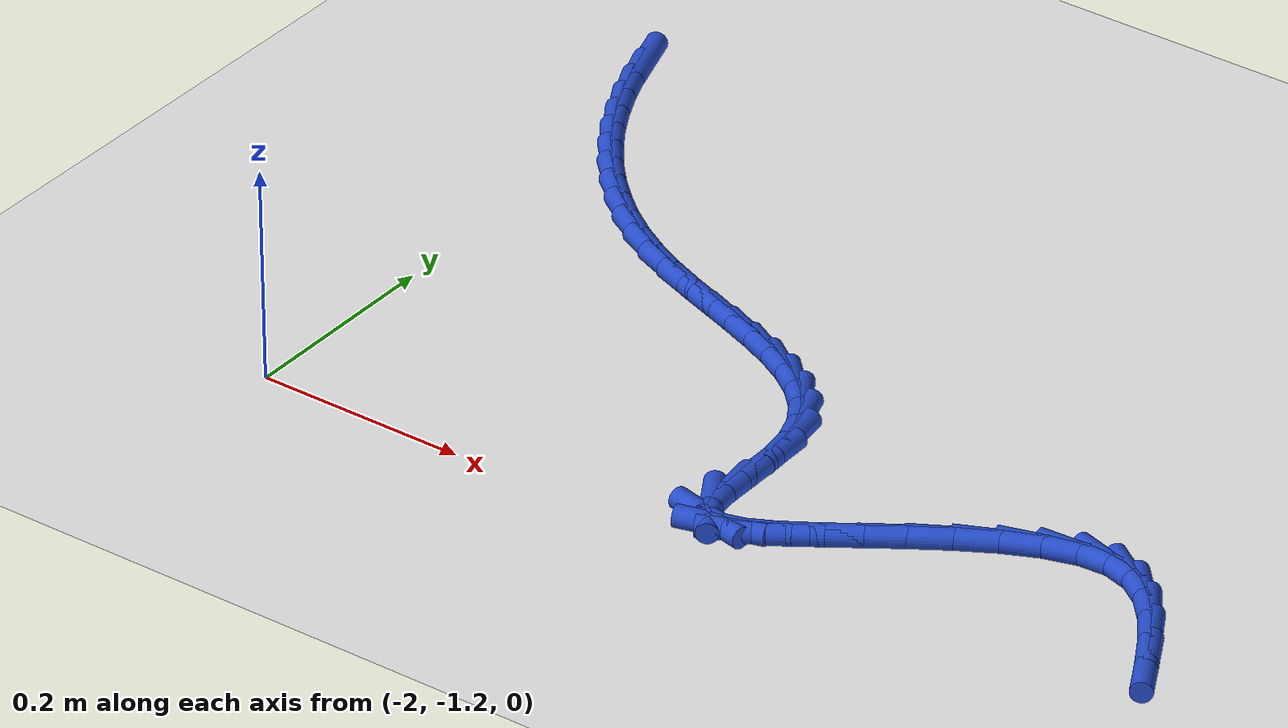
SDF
<sdf version="1.6">
 <world name="default">
  <model name="ground_plane">
   <static>1</static>
   <link name="link">
    <collision name="collision">
     <geometry><plane><normal>0 0 1</normal><size>100 100</size></plane></geometry>
     <surface><friction><ode><mu>100</mu><mu2>50</mu2></ode></friction></surface>
    </collision>
    <visual name="visual">
     <cast_shadows>0</cast_shadows>
     <geometry><plane><normal>0 0 1</normal><size>100 100</size></plane></geometry>
     <material>
      <script><uri>file://media/materials/scripts/gazebo.material</uri><name>Gazebo/WhiteGlow</name></script>
     </material>
    </visual>
   </link>
  </model>
  <model name="line">
   <link name="link_149">
    <pose>-2.0439318531963306 -0.6153956682053037 0.01 0 1.57 -1.243936947325137</pose>
    <collision name="collision">
     <geometry><cylinder><radius>0.01</radius><length>0.08</length></cylinder></geometry>
    </collision>
    <visual name="visual">
     <material>
      <script><name>Gazebo/Blue</name><uri>file://media/materials/scripts/gazebo.material</uri></script>
     </material>
     <geometry><cylinder><radius>0.01</radius><length>0.08</length></cylinder></geometry>
    </visual>
   </link>
   <link name="link_150">
    <pose>-2.034659028122288 -0.642747558064747 0.01 0 1.57 -1.181830582130771</pose>
    <collision name="collision">
     <geometry><cylinder><radius>0.01</radius><length>0.08</length></cylinder></geometry>
    </collision>
    <visual name="visual">
     <material>
      <script><name>Gazebo/Blue</name><uri>file://media/materials/scripts/gazebo.material</uri></script>
     </material>
     <geometry><cylinder><radius>0.01</radius><length>0.08</length></cylinder></geometry>
    </visual>
   </link>
   <link name="link_151">
    <pose>-2.023665917364175 -0.6695700707129312 0.01 0 1.57 -1.1180830093113336</pose>
    <collision name="collision">
     <geometry><cylinder><radius>0.01</radius><length>0.08</length></cylinder></geometry>
    </collision>
    <visual name="visual">
     <material>
      <script><name>Gazebo/Blue</name><uri>file://media/materials/scripts/gazebo.material</uri></script>
     </material>
     <geometry><cylinder><radius>0.01</radius><length>0.08</length></cylinder></geometry>
    </visual>
   </link>
   <link name="link_152">
    <pose>-2.0109474246009262 -0.6957179697811116 0.01 0 1.57 -1.0523707758079772</pose>
    <collision name="collision">
     <geometry><cylinder><radius>0.01</radius><length>0.08</length></cylinder></geometry>
    </collision>
    <visual name="visual">
     <material>
      <script><name>Gazebo/Blue</name><uri>file://media/materials/scripts/gazebo.material</uri></script>
     </material>
     <geometry><cylinder><radius>0.01</radius><length>0.08</length></cylinder></geometry>
    </visual>
   </link>
   <link name="link_153">
    <pose>-1.9964984535114754 -0.7210460189005438 0.01 0 1.57 -0.9844274378381331</pose>
    <collision name="collision">
     <geometry><cylinder><radius>0.01</radius><length>0.08</length></cylinder></geometry>
    </collision>
    <visual name="visual">
     <material>
      <script><name>Gazebo/Blue</name><uri>file://media/materials/scripts/gazebo.material</uri></script>
     </material>
     <geometry><cylinder><radius>0.01</radius><length>0.08</length></cylinder></geometry>
    </visual>
   </link>
   <link name="link_154">
    <pose>-1.9803139077747578 -0.7454089817024832 0.01 0 1.57 -0.9140594174121647</pose>
    <collision name="collision">
     <geometry><cylinder><radius>0.01</radius><length>0.08</length></cylinder></geometry>
    </collision>
    <visual name="visual">
     <material>
      <script><name>Gazebo/Blue</name><uri>file://media/materials/scripts/gazebo.material</uri></script>
     </material>
     <geometry><cylinder><radius>0.01</radius><length>0.08</length></cylinder></geometry>
    </visual>
   </link>
   <link name="link_155">
    <pose>-1.9623886910697081 -0.7686616218181851 0.01 0 1.57 -0.841164737750572</pose>
    <collision name="collision">
     <geometry><cylinder><radius>0.01</radius><length>0.08</length></cylinder></geometry>
    </collision>
    <visual name="visual">
     <material>
      <script><name>Gazebo/Blue</name><uri>file://media/materials/scripts/gazebo.material</uri></script>
     </material>
     <geometry><cylinder><radius>0.01</radius><length>0.08</length></cylinder></geometry>
    </visual>
   </link>
   <link name="link_156">
    <pose>-1.9427177070752593 -0.7906587028789054 0.01 0 1.57 -0.7657529365133701</pose>
    <collision name="collision">
     <geometry><cylinder><radius>0.01</radius><length>0.08</length></cylinder></geometry>
    </collision>
    <visual name="visual">
     <material>
      <script><name>Gazebo/Blue</name><uri>file://media/materials/scripts/gazebo.material</uri></script>
     </material>
     <geometry><cylinder><radius>0.01</radius><length>0.08</length></cylinder></geometry>
    </visual>
   </link>
   <link name="link_157">
    <pose>-1.921295859470348 -0.8112549885158987 0.01 0 1.57 -0.6879633397820253</pose>
    <collision name="collision">
     <geometry><cylinder><radius>0.01</radius><length>0.08</length></cylinder></geometry>
    </collision>
    <visual name="visual">
     <material>
      <script><name>Gazebo/Blue</name><uri>file://media/materials/scripts/gazebo.material</uri></script>
     </material>
     <geometry><cylinder><radius>0.01</radius><length>0.08</length></cylinder></geometry>
    </visual>
   </link>
   <link name="link_158">
    <pose>-1.8981180519339076 -0.8303052423604208 0.01 0 1.57 -0.6080778562134274</pose>
    <collision name="collision">
     <geometry><cylinder><radius>0.01</radius><length>0.08</length></cylinder></geometry>
    </collision>
    <visual name="visual">
     <material>
      <script><name>Gazebo/Blue</name><uri>file://media/materials/scripts/gazebo.material</uri></script>
     </material>
     <geometry><cylinder><radius>0.01</radius><length>0.08</length></cylinder></geometry>
    </visual>
   </link>
   <link name="link_159">
    <pose>-1.8731791881448725 -0.8476642280437269 0.01 0 1.57 -0.5265239638489054</pose>
    <collision name="collision">
     <geometry><cylinder><radius>0.01</radius><length>0.08</length></cylinder></geometry>
    </collision>
    <visual name="visual">
     <material>
      <script><name>Gazebo/Blue</name><uri>file://media/materials/scripts/gazebo.material</uri></script>
     </material>
     <geometry><cylinder><radius>0.01</radius><length>0.08</length></cylinder></geometry>
    </visual>
   </link>
   <link name="link_160">
    <pose>-1.8464741717821773 -0.8631867091970726 0.01 0 1.57 -0.44692525177868425</pose>
    <collision name="collision">
     <geometry><cylinder><radius>0.01</radius><length>0.08</length></cylinder></geometry>
    </collision>
    <visual name="visual">
     <material>
      <script><name>Gazebo/Blue</name><uri>file://media/materials/scripts/gazebo.material</uri></script>
     </material>
     <geometry><cylinder><radius>0.01</radius><length>0.08</length></cylinder></geometry>
    </visual>
   </link>
   <link name="link_161">
    <pose>-1.818065509371105 -0.8768020851127152 0.01 0 1.57 -0.38893417985772805</pose>
    <collision name="collision">
     <geometry><cylinder><radius>0.01</radius><length>0.08</length></cylinder></geometry>
    </collision>
    <visual name="visual">
     <material>
      <script><name>Gazebo/Blue</name><uri>file://media/materials/scripts/gazebo.material</uri></script>
     </material>
     <geometry><cylinder><radius>0.01</radius><length>0.08</length></cylinder></geometry>
    </visual>
   </link>
   <link name="link_162">
    <pose>-1.7884629313958786 -0.8889335043493204 0.01 0 1.57 -0.35823810624329816</pose>
    <collision name="collision">
     <geometry><cylinder><radius>0.01</radius><length>0.08</length></cylinder></geometry>
    </collision>
    <visual name="visual">
     <material>
      <script><name>Gazebo/Blue</name><uri>file://media/materials/scripts/gazebo.material</uri></script>
     </material>
     <geometry><cylinder><radius>0.01</radius><length>0.08</length></cylinder></geometry>
    </visual>
   </link>
   <link name="link_163">
    <pose>-1.758357801504938 -0.9002046441711224 0.01 0 1.57 -0.35338784340697416</pose>
    <collision name="collision">
     <geometry><cylinder><radius>0.01</radius><length>0.08</length></cylinder></geometry>
    </collision>
    <visual name="visual">
     <material>
      <script><name>Gazebo/Blue</name><uri>file://media/materials/scripts/gazebo.material</uri></script>
     </material>
     <geometry><cylinder><radius>0.01</radius><length>0.08</length></cylinder></geometry>
    </visual>
   </link>
   <link name="link_164">
    <pose>-1.7284420061744348 -0.9112397590605381 0.01 0 1.57 -0.3748378931122613</pose>
    <collision name="collision">
     <geometry><cylinder><radius>0.01</radius><length>0.08</length></cylinder></geometry>
    </collision>
    <visual name="visual">
     <material>
      <script><name>Gazebo/Blue</name><uri>file://media/materials/scripts/gazebo.material</uri></script>
     </material>
     <geometry><cylinder><radius>0.01</radius><length>0.08</length></cylinder></geometry>
    </visual>
   </link>
   <link name="link_165">
    <pose>-1.6994074318805212 -0.9226631034999853 0.01 0 1.57 -0.425218535157393</pose>
    <collision name="collision">
     <geometry><cylinder><radius>0.01</radius><length>0.08</length></cylinder></geometry>
    </collision>
    <visual name="visual">
     <material>
      <script><name>Gazebo/Blue</name><uri>file://media/materials/scripts/gazebo.material</uri></script>
     </material>
     <geometry><cylinder><radius>0.01</radius><length>0.08</length></cylinder></geometry>
    </visual>
   </link>
   <link name="link_166">
    <pose>-1.6719459650993527 -0.9350989319718803 0.01 0 1.57 -0.5093558843926371</pose>
    <collision name="collision">
     <geometry><cylinder><radius>0.01</radius><length>0.08</length></cylinder></geometry>
    </collision>
    <visual name="visual">
     <material>
      <script><name>Gazebo/Blue</name><uri>file://media/materials/scripts/gazebo.material</uri></script>
     </material>
     <geometry><cylinder><radius>0.01</radius><length>0.08</length></cylinder></geometry>
    </visual>
   </link>
   <link name="link_167">
    <pose>-1.6467494923070813 -0.9491714989586408 0.01 0 1.57 -0.6334655904787275</pose>
    <collision name="collision">
     <geometry><cylinder><radius>0.01</radius><length>0.08</length></cylinder></geometry>
    </collision>
    <visual name="visual">
     <material>
      <script><name>Gazebo/Blue</name><uri>file://media/materials/scripts/gazebo.material</uri></script>
     </material>
     <geometry><cylinder><radius>0.01</radius><length>0.08</length></cylinder></geometry>
    </visual>
   </link>
   <link name="link_168">
    <pose>-1.6245098999798608 -0.9655050589426838 0.01 0 1.57 -0.8020056862638616</pose>
    <collision name="collision">
     <geometry><cylinder><radius>0.01</radius><length>0.08</length></cylinder></geometry>
    </collision>
    <visual name="visual">
     <material>
      <script><name>Gazebo/Blue</name><uri>file://media/materials/scripts/gazebo.material</uri></script>
     </material>
     <geometry><cylinder><radius>0.01</radius><length>0.08</length></cylinder></geometry>
    </visual>
   </link>
   <link name="link_169">
    <pose>-1.6059190745938434 -0.9847238664064263 0.01 0 1.57 -1.0107751995092813</pose>
    <collision name="collision">
     <geometry><cylinder><radius>0.01</radius><length>0.08</length></cylinder></geometry>
    </collision>
    <visual name="visual">
     <material>
      <script><name>Gazebo/Blue</name><uri>file://media/materials/scripts/gazebo.material</uri></script>
     </material>
     <geometry><cylinder><radius>0.01</radius><length>0.08</length></cylinder></geometry>
    </visual>
   </link>
   <link name="link_170">
    <pose>-1.5916689026251825 -1.0074521758322854 0.01 0 1.57 -1.240239801472125</pose>
    <collision name="collision">
     <geometry><cylinder><radius>0.01</radius><length>0.08</length></cylinder></geometry>
    </collision>
    <visual name="visual">
     <material>
      <script><name>Gazebo/Blue</name><uri>file://media/materials/scripts/gazebo.material</uri></script>
     </material>
     <geometry><cylinder><radius>0.01</radius><length>0.08</length></cylinder></geometry>
    </visual>
   </link>
   <link name="link_171">
    <pose>-1.582451270550032 -1.034314241702679 0.01 0 1.57 -1.445819126922997</pose>
    <collision name="collision">
     <geometry><cylinder><radius>0.01</radius><length>0.08</length></cylinder></geometry>
    </collision>
    <visual name="visual">
     <material>
      <script><name>Gazebo/Blue</name><uri>file://media/materials/scripts/gazebo.material</uri></script>
     </material>
     <geometry><cylinder><radius>0.01</radius><length>0.08</length></cylinder></geometry>
    </visual>
   </link>
   <link name="link_172">
    <pose>-1.5785439148032974 -1.0654158438190542 0.01 0 1.57 -1.54991394669706</pose>
    <collision name="collision">
     <geometry><cylinder><radius>0.01</radius><length>0.08</length></cylinder></geometry>
    </collision>
    <visual name="visual">
     <material>
      <script><name>Gazebo/Blue</name><uri>file://media/materials/scripts/gazebo.material</uri></script>
     </material>
     <geometry><cylinder><radius>0.01</radius><length>0.08</length></cylinder></geometry>
    </visual>
   </link>
   <link name="link_173">
    <pose>-1.5778652783531388 -1.0979091610999412 0.01 0 1.57 -1.5586037907955403</pose>
    <collision name="collision">
     <geometry><cylinder><radius>0.01</radius><length>0.08</length></cylinder></geometry>
    </collision>
    <visual name="visual">
     <material>
      <script><name>Gazebo/Blue</name><uri>file://media/materials/scripts/gazebo.material</uri></script>
     </material>
     <geometry><cylinder><radius>0.01</radius><length>0.08</length></cylinder></geometry>
    </visual>
   </link>
   <link name="link_174">
    <pose>-1.5774995715106555 -1.1279019961083319 0.01 0 1.57 -1.4456211491858422</pose>
    <collision name="collision">
     <geometry><cylinder><radius>0.01</radius><length>0.08</length></cylinder></geometry>
    </collision>
    <visual name="visual">
     <material>
      <script><name>Gazebo/Blue</name><uri>file://media/materials/scripts/gazebo.material</uri></script>
     </material>
     <geometry><cylinder><radius>0.01</radius><length>0.08</length></cylinder></geometry>
    </visual>
   </link>
   <link name="link_175">
    <pose>-1.5745300427108835 -1.1515009472340065 0.01 0 1.57 -1.0238920165875784</pose>
    <collision name="collision">
     <geometry><cylinder><radius>0.01</radius><length>0.08</length></cylinder></geometry>
    </collision>
    <visual name="visual">
     <material>
      <script><name>Gazebo/Blue</name><uri>file://media/materials/scripts/gazebo.material</uri></script>
     </material>
     <geometry><cylinder><radius>0.01</radius><length>0.08</length></cylinder></geometry>
    </visual>
   </link>
   <link name="link_176">
    <pose>-1.5662396359705688 -1.1651173608487608 0.01 0 1.57 -0.23280519381073805</pose>
    <collision name="collision">
     <geometry><cylinder><radius>0.01</radius><length>0.08</length></cylinder></geometry>
    </collision>
    <visual name="visual">
     <material>
      <script><name>Gazebo/Blue</name><uri>file://media/materials/scripts/gazebo.material</uri></script>
     </material>
     <geometry><cylinder><radius>0.01</radius><length>0.08</length></cylinder></geometry>
    </visual>
   </link>
   <link name="link_177">
    <pose>-1.5520814228354425 -1.1684743340377017 0.01 0 1.57 0.2614011477646346</pose>
    <collision name="collision">
     <geometry><cylinder><radius>0.01</radius><length>0.08</length></cylinder></geometry>
    </collision>
    <visual name="visual">
     <material>
      <script><name>Gazebo/Blue</name><uri>file://media/materials/scripts/gazebo.material</uri></script>
     </material>
     <geometry><cylinder><radius>0.01</radius><length>0.08</length></cylinder></geometry>
    </visual>
   </link>
   <link name="link_178">
    <pose>-1.5328398947525868 -1.1633267941581795 0.01 0 1.57 0.4672852545431455</pose>
    <collision name="collision">
     <geometry><cylinder><radius>0.01</radius><length>0.08</length></cylinder></geometry>
    </collision>
    <visual name="visual">
     <material>
      <script><name>Gazebo/Blue</name><uri>file://media/materials/scripts/gazebo.material</uri></script>
     </material>
     <geometry><cylinder><radius>0.01</radius><length>0.08</length></cylinder></geometry>
    </visual>
   </link>
   <link name="link_179">
    <pose>-1.5093188430457691 -1.1514591213898 0.01 0 1.57 0.5567442102417273</pose>
    <collision name="collision">
     <geometry><cylinder><radius>0.01</radius><length>0.08</length></cylinder></geometry>
    </collision>
    <visual name="visual">
     <material>
      <script><name>Gazebo/Blue</name><uri>file://media/materials/scripts/gazebo.material</uri></script>
     </material>
     <geometry><cylinder><radius>0.01</radius><length>0.08</length></cylinder></geometry>
    </visual>
   </link>
   <link name="link_180">
    <pose>-1.48232205903876 -1.1346556959121714 0.01 0 1.57 0.5920900873081881</pose>
    <collision name="collision">
     <geometry><cylinder><radius>0.01</radius><length>0.08</length></cylinder></geometry>
    </collision>
    <visual name="visual">
     <material>
      <script><name>Gazebo/Blue</name><uri>file://media/materials/scripts/gazebo.material</uri></script>
     </material>
     <geometry><cylinder><radius>0.01</radius><length>0.08</length></cylinder></geometry>
    </visual>
   </link>
   <link name="link_181">
    <pose>-1.452653334055327 -1.1147008979048982 0.01 0 1.57 0.5944986468596313</pose>
    <collision name="collision">
     <geometry><cylinder><radius>0.01</radius><length>0.08</length></cylinder></geometry>
    </collision>
    <visual name="visual">
     <material>
      <script><name>Gazebo/Blue</name><uri>file://media/materials/scripts/gazebo.material</uri></script>
     </material>
     <geometry><cylinder><radius>0.01</radius><length>0.08</length></cylinder></geometry>
    </visual>
   </link>
   <link name="link_182">
    <pose>-1.4211164594192416 -1.0933791075475905 0.01 0 1.57 0.5701747260457853</pose>
    <collision name="collision">
     <geometry><cylinder><radius>0.01</radius><length>0.08</length></cylinder></geometry>
    </collision>
    <visual name="visual">
     <material>
      <script><name>Gazebo/Blue</name><uri>file://media/materials/scripts/gazebo.material</uri></script>
     </material>
     <geometry><cylinder><radius>0.01</radius><length>0.08</length></cylinder></geometry>
    </visual>
   </link>
   <link name="link_183">
    <pose>-1.388515226454271 -1.0724747050198529 0.01 0 1.57 0.517411590307886</pose>
    <collision name="collision">
     <geometry><cylinder><radius>0.01</radius><length>0.08</length></cylinder></geometry>
    </collision>
    <visual name="visual">
     <material>
      <script><name>Gazebo/Blue</name><uri>file://media/materials/scripts/gazebo.material</uri></script>
     </material>
     <geometry><cylinder><radius>0.01</radius><length>0.08</length></cylinder></geometry>
    </visual>
   </link>
   <link name="link_184">
    <pose>-1.3556534264841853 -1.0537720705012932 0.01 0 1.57 0.4272997844936348</pose>
    <collision name="collision">
     <geometry><cylinder><radius>0.01</radius><length>0.08</length></cylinder></geometry>
    </collision>
    <visual name="visual">
     <material>
      <script><name>Gazebo/Blue</name><uri>file://media/materials/scripts/gazebo.material</uri></script>
     </material>
     <geometry><cylinder><radius>0.01</radius><length>0.08</length></cylinder></geometry>
    </visual>
   </link>
   <link name="link_185">
    <pose>-1.3233348508327534 -1.0390555841715183 0.01 0 1.57 0.2811910289858751</pose>
    <collision name="collision">
     <geometry><cylinder><radius>0.01</radius><length>0.08</length></cylinder></geometry>
    </collision>
    <visual name="visual">
     <material>
      <script><name>Gazebo/Blue</name><uri>file://media/materials/scripts/gazebo.material</uri></script>
     </material>
     <geometry><cylinder><radius>0.01</radius><length>0.08</length></cylinder></geometry>
    </visual>
   </link>
   <link name="link_186">
    <pose>-1.2923632908237448 -1.0301096262101348 0.01 0 1.57 0.04822812018552852</pose>
    <collision name="collision">
     <geometry><cylinder><radius>0.01</radius><length>0.08</length></cylinder></geometry>
    </collision>
    <visual name="visual">
     <material>
      <script><name>Gazebo/Blue</name><uri>file://media/materials/scripts/gazebo.material</uri></script>
     </material>
     <geometry><cylinder><radius>0.01</radius><length>0.08</length></cylinder></geometry>
    </visual>
   </link>
   <link name="link_187">
    <pose>-1.2635425377809273 -1.0287185767967493 0.01 0 1.57 -0.29058141534288245</pose>
    <collision name="collision">
     <geometry><cylinder><radius>0.01</radius><length>0.08</length></cylinder></geometry>
    </collision>
    <visual name="visual">
     <material>
      <script><name>Gazebo/Blue</name><uri>file://media/materials/scripts/gazebo.material</uri></script>
     </material>
     <geometry><cylinder><radius>0.01</radius><length>0.08</length></cylinder></geometry>
    </visual>
   </link>
   <link name="link_188">
    <pose>-1.2376142459155084 -1.0364723310219526 0.01 0 1.57 -0.6147782040244376</pose>
    <collision name="collision">
     <geometry><cylinder><radius>0.01</radius><length>0.08</length></cylinder></geometry>
    </collision>
    <visual name="visual">
     <material>
      <script><name>Gazebo/Blue</name><uri>file://media/materials/scripts/gazebo.material</uri></script>
     </material>
     <geometry><cylinder><radius>0.01</radius><length>0.08</length></cylinder></geometry>
    </visual>
   </link>
   <link name="link_189">
    <pose>-1.2146038169130573 -1.0527189605239264 0.01 0 1.57 -0.8345484448557245</pose>
    <collision name="collision">
     <geometry><cylinder><radius>0.01</radius><length>0.08</length></cylinder></geometry>
    </collision>
    <visual name="visual">
     <material>
      <script><name>Gazebo/Blue</name><uri>file://media/materials/scripts/gazebo.material</uri></script>
     </material>
     <geometry><cylinder><radius>0.01</radius><length>0.08</length></cylinder></geometry>
    </visual>
   </link>
   <link name="link_190">
    <pose>-1.1940774301427906 -1.0753692011942872 0.01 0 1.57 -0.9694742038903321</pose>
    <collision name="collision">
     <geometry><cylinder><radius>0.01</radius><length>0.08</length></cylinder></geometry>
    </collision>
    <visual name="visual">
     <material>
      <script><name>Gazebo/Blue</name><uri>file://media/materials/scripts/gazebo.material</uri></script>
     </material>
     <geometry><cylinder><radius>0.01</radius><length>0.08</length></cylinder></geometry>
    </visual>
   </link>
   <link name="link_191">
    <pose>-1.175593739452909 -1.1023102345371971 0.01 0 1.57 -1.045384300618997</pose>
    <collision name="collision">
     <geometry><cylinder><radius>0.01</radius><length>0.08</length></cylinder></geometry>
    </collision>
    <visual name="visual">
     <material>
      <script><name>Gazebo/Blue</name><uri>file://media/materials/scripts/gazebo.material</uri></script>
     </material>
     <geometry><cylinder><radius>0.01</radius><length>0.08</length></cylinder></geometry>
    </visual>
   </link>
   <link name="link_192">
    <pose>-1.1587113986916135 -1.1314292420568175 0.01 0 1.57 -1.0766481169429836</pose>
    <collision name="collision">
     <geometry><cylinder><radius>0.01</radius><length>0.08</length></cylinder></geometry>
    </collision>
    <visual name="visual">
     <material>
      <script><name>Gazebo/Blue</name><uri>file://media/materials/scripts/gazebo.material</uri></script>
     </material>
     <geometry><cylinder><radius>0.01</radius><length>0.08</length></cylinder></geometry>
    </visual>
   </link>
  </model>
 </world>
</sdf>
